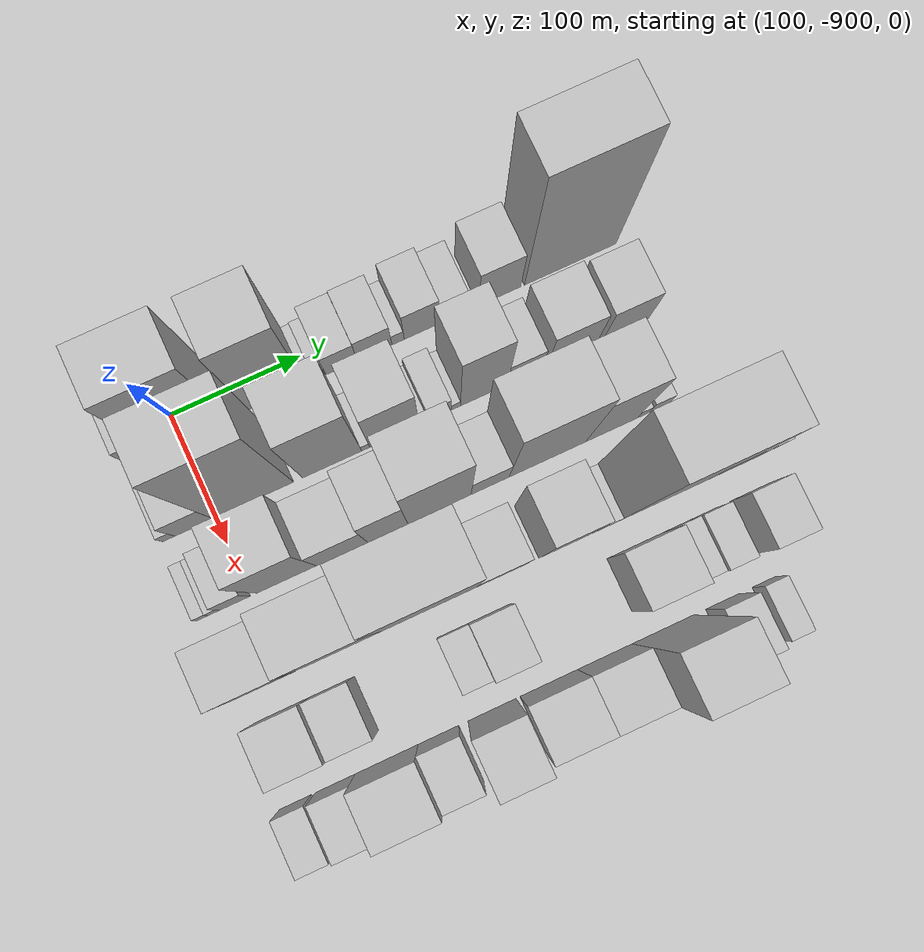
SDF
<sdf version="1.6">
 <world name="default">
  <model name="building_1">
   <static>1</static>
   <pose>100.0000 -928.6294 0 0.000000 0.000000 0.000000</pose>
   <link name="link">
    <pose>0 0 21.00 0 0 0</pose>
    <collision name="collision"><geometry><box><size>40.0000 22.7412 42.0000</size></box></geometry></collision>
    <visual name="visual">
     <cast_shadows>0</cast_shadows>
     <geometry><box><size>40.0000 22.7412 42.0000</size></box></geometry>
     <material>
      <script>
       <uri>model://HANNAS_wall/materials/scripts</uri>
       <uri>model://HANNAS_wall/materials/textures</uri>
       <name>vrc/HANNAS_wall</name>
      </script>
     </material>
    </visual>
   </link>
  </model>
  <model name="building_2">
   <static>1</static>
   <pose>100.0000 -889.6403 0 0.000000 0.000000 0.000000</pose>
   <link name="link">
    <pose>0 0 75.00 0 0 0</pose>
    <collision name="collision"><geometry><box><size>40.0000 55.2371 150.0000</size></box></geometry></collision>
    <visual name="visual">
     <cast_shadows>0</cast_shadows>
     <geometry><box><size>40.0000 55.2371 150.0000</size></box></geometry>
     <material>
      <script>
       <uri>model://HANNAS_wall/materials/scripts</uri>
       <uri>model://HANNAS_wall/materials/textures</uri>
       <name>vrc/HANNAS_wall</name>
      </script>
     </material>
    </visual>
   </link>
  </model>
  <model name="building_3">
   <static>1</static>
   <pose>100.0000 -851.6356 0 0.000000 0.000000 0.000000</pose>
   <link name="link">
    <pose>0 0 7.50 0 0 0</pose>
    <collision name="collision"><geometry><box><size>40.0000 6.7722 15.0000</size></box></geometry></collision>
    <visual name="visual">
     <cast_shadows>0</cast_shadows>
     <geometry><box><size>40.0000 6.7722 15.0000</size></box></geometry>
     <material>
      <script>
       <uri>model://HANNAS_wall/materials/scripts</uri>
       <uri>model://HANNAS_wall/materials/textures</uri>
       <name>vrc/HANNAS_wall</name>
      </script>
     </material>
    </visual>
   </link>
  </model>
  <model name="building_4">
   <static>1</static>
   <pose>100.0000 -826.1524 0 0.000000 0.000000 0.000000</pose>
   <link name="link">
    <pose>0 0 73.50 0 0 0</pose>
    <collision name="collision"><geometry><box><size>40.0000 44.1944 147.0000</size></box></geometry></collision>
    <visual name="visual">
     <cast_shadows>0</cast_shadows>
     <geometry><box><size>40.0000 44.1944 147.0000</size></box></geometry>
     <material>
      <script>
       <uri>model://HANNAS_wall/materials/scripts</uri>
       <uri>model://HANNAS_wall/materials/textures</uri>
       <name>vrc/HANNAS_wall</name>
      </script>
     </material>
    </visual>
   </link>
  </model>
  <model name="building_5">
   <static>1</static>
   <pose>100.0000 -800.8621 0 0.000000 0.000000 0.000000</pose>
   <link name="link">
    <pose>0 0 7.50 0 0 0</pose>
    <collision name="collision"><geometry><box><size>40.0000 6.3861 15.0000</size></box></geometry></collision>
    <visual name="visual">
     <cast_shadows>0</cast_shadows>
     <geometry><box><size>40.0000 6.3861 15.0000</size></box></geometry>
     <material>
      <script>
       <uri>model://HANNAS_wall/materials/scripts</uri>
       <uri>model://HANNAS_wall/materials/textures</uri>
       <name>vrc/HANNAS_wall</name>
      </script>
     </material>
    </visual>
   </link>
  </model>
  <model name="building_6">
   <static>1</static>
   <pose>100.0000 -793.3792 0 0.000000 0.000000 0.000000</pose>
   <link name="link">
    <pose>0 0 9.00 0 0 0</pose>
    <collision name="collision"><geometry><box><size>40.0000 8.5798 18.0000</size></box></geometry></collision>
    <visual name="visual">
     <cast_shadows>0</cast_shadows>
     <geometry><box><size>40.0000 8.5798 18.0000</size></box></geometry>
     <material>
      <script>
       <uri>model://HANNAS_wall/materials/scripts</uri>
       <uri>model://HANNAS_wall/materials/textures</uri>
       <name>vrc/HANNAS_wall</name>
      </script>
     </material>
    </visual>
   </link>
  </model>
  <model name="building_7">
   <static>1</static>
   <pose>100.0000 -776.9503 0 0.000000 0.000000 0.000000</pose>
   <link name="link">
    <pose>0 0 21.00 0 0 0</pose>
    <collision name="collision"><geometry><box><size>40.0000 24.2779 42.0000</size></box></geometry></collision>
    <visual name="visual">
     <cast_shadows>0</cast_shadows>
     <geometry><box><size>40.0000 24.2779 42.0000</size></box></geometry>
     <material>
      <script>
       <uri>model://HANNAS_wall/materials/scripts</uri>
       <uri>model://HANNAS_wall/materials/textures</uri>
       <name>vrc/HANNAS_wall</name>
      </script>
     </material>
    </visual>
   </link>
  </model>
  <model name="building_8">
   <static>1</static>
   <pose>100.0000 -751.3723 0 0.000000 0.000000 0.000000</pose>
   <link name="link">
    <pose>0 0 22.50 0 0 0</pose>
    <collision name="collision"><geometry><box><size>40.0000 26.8782 45.0000</size></box></geometry></collision>
    <visual name="visual">
     <cast_shadows>0</cast_shadows>
     <geometry><box><size>40.0000 26.8782 45.0000</size></box></geometry>
     <material>
      <script>
       <uri>model://HANNAS_wall/materials/scripts</uri>
       <uri>model://HANNAS_wall/materials/textures</uri>
       <name>vrc/HANNAS_wall</name>
      </script>
     </material>
    </visual>
   </link>
  </model>
  <model name="building_9">
   <static>1</static>
   <pose>100.0000 -733.1726 0 0.000000 0.000000 0.000000</pose>
   <link name="link">
    <pose>0 0 10.50 0 0 0</pose>
    <collision name="collision"><geometry><box><size>40.0000 9.5210 21.0000</size></box></geometry></collision>
    <visual name="visual">
     <cast_shadows>0</cast_shadows>
     <geometry><box><size>40.0000 9.5210 21.0000</size></box></geometry>
     <material>
      <script>
       <uri>model://HANNAS_wall/materials/scripts</uri>
       <uri>model://HANNAS_wall/materials/textures</uri>
       <name>vrc/HANNAS_wall</name>
      </script>
     </material>
    </visual>
   </link>
  </model>
  <model name="building_10">
   <static>1</static>
   <pose>100.0000 -714.5691 0 0.000000 0.000000 0.000000</pose>
   <link name="link">
    <pose>0 0 27.00 0 0 0</pose>
    <collision name="collision"><geometry><box><size>40.0000 27.6860 54.0000</size></box></geometry></collision>
    <visual name="visual">
     <cast_shadows>0</cast_shadows>
     <geometry><box><size>40.0000 27.6860 54.0000</size></box></geometry>
     <material>
      <script>
       <uri>model://HANNAS_wall/materials/scripts</uri>
       <uri>model://HANNAS_wall/materials/textures</uri>
       <name>vrc/HANNAS_wall</name>
      </script>
     </material>
    </visual>
   </link>
  </model>
  <model name="building_11">
   <static>1</static>
   <pose>100.0000 -689.6385 0 0.000000 0.000000 0.000000</pose>
   <link name="link">
    <pose>0 0 21.00 0 0 0</pose>
    <collision name="collision"><geometry><box><size>40.0000 22.1752 42.0000</size></box></geometry></collision>
    <visual name="visual">
     <cast_shadows>0</cast_shadows>
     <geometry><box><size>40.0000 22.1752 42.0000</size></box></geometry>
     <material>
      <script>
       <uri>model://HANNAS_wall/materials/scripts</uri>
       <uri>model://HANNAS_wall/materials/textures</uri>
       <name>vrc/HANNAS_wall</name>
      </script>
     </material>
    </visual>
   </link>
  </model>
  <model name="building_12">
   <static>1</static>
   <pose>100.0000 -654.0368 0 0.000000 0.000000 0.000000</pose>
   <link name="link">
    <pose>0 0 33.00 0 0 0</pose>
    <collision name="collision"><geometry><box><size>40.0000 33.0283 66.0000</size></box></geometry></collision>
    <visual name="visual">
     <cast_shadows>0</cast_shadows>
     <geometry><box><size>40.0000 33.0283 66.0000</size></box></geometry>
     <material>
      <script>
       <uri>model://HANNAS_wall/materials/scripts</uri>
       <uri>model://HANNAS_wall/materials/textures</uri>
       <name>vrc/HANNAS_wall</name>
      </script>
     </material>
    </visual>
   </link>
  </model>
  <model name="building_13">
   <static>1</static>
   <pose>100.0000 -598.4503 0 0.000000 0.000000 0.000000</pose>
   <link name="link">
    <pose>0 0 93.00 0 0 0</pose>
    <collision name="collision"><geometry><box><size>40.0000 72.1446 186.0000</size></box></geometry></collision>
    <visual name="visual">
     <cast_shadows>0</cast_shadows>
     <geometry><box><size>40.0000 72.1446 186.0000</size></box></geometry>
     <material>
      <script>
       <uri>model://HANNAS_wall/materials/scripts</uri>
       <uri>model://HANNAS_wall/materials/textures</uri>
       <name>vrc/HANNAS_wall</name>
      </script>
     </material>
    </visual>
   </link>
  </model>
  <model name="building_62">
   <static>1</static>
   <pose>160.0000 -935.3581 0 0.000000 0.000000 0.000000</pose>
   <link name="link">
    <pose>0 0 10.50 0 0 0</pose>
    <collision name="collision"><geometry><box><size>40.0000 9.2838 21.0000</size></box></geometry></collision>
    <visual name="visual">
     <cast_shadows>0</cast_shadows>
     <geometry><box><size>40.0000 9.2838 21.0000</size></box></geometry>
     <material>
      <script>
       <uri>model://HANNAS_wall/materials/scripts</uri>
       <uri>model://HANNAS_wall/materials/textures</uri>
       <name>vrc/HANNAS_wall</name>
      </script>
     </material>
    </visual>
   </link>
  </model>
  <model name="building_63">
   <static>1</static>
   <pose>160.0000 -916.2268 0 0.000000 0.000000 0.000000</pose>
   <link name="link">
    <pose>0 0 25.50 0 0 0</pose>
    <collision name="collision"><geometry><box><size>40.0000 28.9789 51.0000</size></box></geometry></collision>
    <visual name="visual">
     <cast_shadows>0</cast_shadows>
     <geometry><box><size>40.0000 28.9789 51.0000</size></box></geometry>
     <material>
      <script>
       <uri>model://HANNAS_wall/materials/scripts</uri>
       <uri>model://HANNAS_wall/materials/textures</uri>
       <name>vrc/HANNAS_wall</name>
      </script>
     </material>
    </visual>
   </link>
  </model>
  <model name="building_64">
   <static>1</static>
   <pose>160.0000 -871.2117 0 0.000000 0.000000 0.000000</pose>
   <link name="link">
    <pose>0 0 93.00 0 0 0</pose>
    <collision name="collision"><geometry><box><size>40.0000 61.0512 186.0000</size></box></geometry></collision>
    <visual name="visual">
     <cast_shadows>0</cast_shadows>
     <geometry><box><size>40.0000 61.0512 186.0000</size></box></geometry>
     <material>
      <script>
       <uri>model://HANNAS_wall/materials/scripts</uri>
       <uri>model://HANNAS_wall/materials/textures</uri>
       <name>vrc/HANNAS_wall</name>
      </script>
     </material>
    </visual>
   </link>
  </model>
  <model name="building_65">
   <static>1</static>
   <pose>160.0000 -811.0714 0 0.000000 0.000000 0.000000</pose>
   <link name="link">
    <pose>0 0 66.00 0 0 0</pose>
    <collision name="collision"><geometry><box><size>40.0000 45.2295 132.0000</size></box></geometry></collision>
    <visual name="visual">
     <cast_shadows>0</cast_shadows>
     <geometry><box><size>40.0000 45.2295 132.0000</size></box></geometry>
     <material>
      <script>
       <uri>model://HANNAS_wall/materials/scripts</uri>
       <uri>model://HANNAS_wall/materials/textures</uri>
       <name>vrc/HANNAS_wall</name>
      </script>
     </material>
    </visual>
   </link>
  </model>
  <model name="building_66">
   <static>1</static>
   <pose>160.0000 -785.3472 0 0.000000 0.000000 0.000000</pose>
   <link name="link">
    <pose>0 0 7.50 0 0 0</pose>
    <collision name="collision"><geometry><box><size>40.0000 6.2188 15.0000</size></box></geometry></collision>
    <visual name="visual">
     <cast_shadows>0</cast_shadows>
     <geometry><box><size>40.0000 6.2188 15.0000</size></box></geometry>
     <material>
      <script>
       <uri>model://HANNAS_wall/materials/scripts</uri>
       <uri>model://HANNAS_wall/materials/textures</uri>
       <name>vrc/HANNAS_wall</name>
      </script>
     </material>
    </visual>
   </link>
  </model>
  <model name="building_67">
   <static>1</static>
   <pose>160.0000 -763.3265 0 0.000000 0.000000 0.000000</pose>
   <link name="link">
    <pose>0 0 48.00 0 0 0</pose>
    <collision name="collision"><geometry><box><size>40.0000 37.8226 96.0000</size></box></geometry></collision>
    <visual name="visual">
     <cast_shadows>0</cast_shadows>
     <geometry><box><size>40.0000 37.8226 96.0000</size></box></geometry>
     <material>
      <script>
       <uri>model://HANNAS_wall/materials/scripts</uri>
       <uri>model://HANNAS_wall/materials/textures</uri>
       <name>vrc/HANNAS_wall</name>
      </script>
     </material>
    </visual>
   </link>
  </model>
  <model name="building_68">
   <static>1</static>
   <pose>160.0000 -741.1229 0 0.000000 0.000000 0.000000</pose>
   <link name="link">
    <pose>0 0 7.50 0 0 0</pose>
    <collision name="collision"><geometry><box><size>40.0000 6.5846 15.0000</size></box></geometry></collision>
    <visual name="visual">
     <cast_shadows>0</cast_shadows>
     <geometry><box><size>40.0000 6.5846 15.0000</size></box></geometry>
     <material>
      <script>
       <uri>model://HANNAS_wall/materials/scripts</uri>
       <uri>model://HANNAS_wall/materials/textures</uri>
       <name>vrc/HANNAS_wall</name>
      </script>
     </material>
    </visual>
   </link>
  </model>
  <model name="building_69">
   <static>1</static>
   <pose>160.0000 -728.6332 0 0.000000 0.000000 0.000000</pose>
   <link name="link">
    <pose>0 0 16.50 0 0 0</pose>
    <collision name="collision"><geometry><box><size>40.0000 18.3947 33.0000</size></box></geometry></collision>
    <visual name="visual">
     <cast_shadows>0</cast_shadows>
     <geometry><box><size>40.0000 18.3947 33.0000</size></box></geometry>
     <material>
      <script>
       <uri>model://HANNAS_wall/materials/scripts</uri>
       <uri>model://HANNAS_wall/materials/textures</uri>
       <name>vrc/HANNAS_wall</name>
      </script>
     </material>
    </visual>
   </link>
  </model>
  <model name="building_70">
   <static>1</static>
   <pose>160.0000 -715.9429 0 0.000000 0.000000 0.000000</pose>
   <link name="link">
    <pose>0 0 7.50 0 0 0</pose>
    <collision name="collision"><geometry><box><size>40.0000 6.9858 15.0000</size></box></geometry></collision>
    <visual name="visual">
     <cast_shadows>0</cast_shadows>
     <geometry><box><size>40.0000 6.9858 15.0000</size></box></geometry>
     <material>
      <script>
       <uri>model://HANNAS_wall/materials/scripts</uri>
       <uri>model://HANNAS_wall/materials/textures</uri>
       <name>vrc/HANNAS_wall</name>
      </script>
     </material>
    </visual>
   </link>
  </model>
  <model name="building_71">
   <static>1</static>
   <pose>160.0000 -694.3924 0 0.000000 0.000000 0.000000</pose>
   <link name="link">
    <pose>0 0 60.00 0 0 0</pose>
    <collision name="collision"><geometry><box><size>40.0000 36.1153 120.0000</size></box></geometry></collision>
    <visual name="visual">
     <cast_shadows>0</cast_shadows>
     <geometry><box><size>40.0000 36.1153 120.0000</size></box></geometry>
     <material>
      <script>
       <uri>model://HANNAS_wall/materials/scripts</uri>
       <uri>model://HANNAS_wall/materials/textures</uri>
       <name>vrc/HANNAS_wall</name>
      </script>
     </material>
    </visual>
   </link>
  </model>
  <model name="building_72">
   <static>1</static>
   <pose>160.0000 -662.8366 0 0.000000 0.000000 0.000000</pose>
   <link name="link">
    <pose>0 0 25.50 0 0 0</pose>
    <collision name="collision"><geometry><box><size>40.0000 26.9964 51.0000</size></box></geometry></collision>
    <visual name="visual">
     <cast_shadows>0</cast_shadows>
     <geometry><box><size>40.0000 26.9964 51.0000</size></box></geometry>
     <material>
      <script>
       <uri>model://HANNAS_wall/materials/scripts</uri>
       <uri>model://HANNAS_wall/materials/textures</uri>
       <name>vrc/HANNAS_wall</name>
      </script>
     </material>
    </visual>
   </link>
  </model>
  <model name="building_73">
   <static>1</static>
   <pose>160.0000 -626.2152 0 0.000000 0.000000 0.000000</pose>
   <link name="link">
    <pose>0 0 36.00 0 0 0</pose>
    <collision name="collision"><geometry><box><size>40.0000 38.2463 72.0000</size></box></geometry></collision>
    <visual name="visual">
     <cast_shadows>0</cast_shadows>
     <geometry><box><size>40.0000 38.2463 72.0000</size></box></geometry>
     <material>
      <script>
       <uri>model://HANNAS_wall/materials/scripts</uri>
       <uri>model://HANNAS_wall/materials/textures</uri>
       <name>vrc/HANNAS_wall</name>
      </script>
     </material>
    </visual>
   </link>
  </model>
  <model name="building_74">
   <static>1</static>
   <pose>160.0000 -584.4956 0 0.000000 0.000000 0.000000</pose>
   <link name="link">
    <pose>0 0 33.00 0 0 0</pose>
    <collision name="collision"><geometry><box><size>40.0000 35.1929 66.0000</size></box></geometry></collision>
    <visual name="visual">
     <cast_shadows>0</cast_shadows>
     <geometry><box><size>40.0000 35.1929 66.0000</size></box></geometry>
     <material>
      <script>
       <uri>model://HANNAS_wall/materials/scripts</uri>
       <uri>model://HANNAS_wall/materials/textures</uri>
       <name>vrc/HANNAS_wall</name>
      </script>
     </material>
    </visual>
   </link>
  </model>
  <model name="building_116">
   <static>1</static>
   <pose>220.0000 -935.5177 0 0.000000 0.000000 0.000000</pose>
   <link name="link">
    <pose>0 0 9.00 0 0 0</pose>
    <collision name="collision"><geometry><box><size>40.0000 8.9646 18.0000</size></box></geometry></collision>
    <visual name="visual">
     <cast_shadows>0</cast_shadows>
     <geometry><box><size>40.0000 8.9646 18.0000</size></box></geometry>
     <material>
      <script>
       <uri>model://HANNAS_wall/materials/scripts</uri>
       <uri>model://HANNAS_wall/materials/textures</uri>
       <name>vrc/HANNAS_wall</name>
      </script>
     </material>
    </visual>
   </link>
  </model>
  <model name="building_117">
   <static>1</static>
   <pose>220.0000 -926.5762 0 0.000000 0.000000 0.000000</pose>
   <link name="link">
    <pose>0 0 9.00 0 0 0</pose>
    <collision name="collision"><geometry><box><size>40.0000 8.9185 18.0000</size></box></geometry></collision>
    <visual name="visual">
     <cast_shadows>0</cast_shadows>
     <geometry><box><size>40.0000 8.9185 18.0000</size></box></geometry>
     <material>
      <script>
       <uri>model://HANNAS_wall/materials/scripts</uri>
       <uri>model://HANNAS_wall/materials/textures</uri>
       <name>vrc/HANNAS_wall</name>
      </script>
     </material>
    </visual>
   </link>
  </model>
  <model name="building_118">
   <static>1</static>
   <pose>220.0000 -911.1146 0 0.000000 0.000000 0.000000</pose>
   <link name="link">
    <pose>0 0 21.00 0 0 0</pose>
    <collision name="collision"><geometry><box><size>40.0000 22.0046 42.0000</size></box></geometry></collision>
    <visual name="visual">
     <cast_shadows>0</cast_shadows>
     <geometry><box><size>40.0000 22.0046 42.0000</size></box></geometry>
     <material>
      <script>
       <uri>model://HANNAS_wall/materials/scripts</uri>
       <uri>model://HANNAS_wall/materials/textures</uri>
       <name>vrc/HANNAS_wall</name>
      </script>
     </material>
    </visual>
   </link>
  </model>
  <model name="building_119">
   <static>1</static>
   <pose>220.0000 -872.4692 0 0.000000 0.000000 0.000000</pose>
   <link name="link">
    <pose>0 0 60.00 0 0 0</pose>
    <collision name="collision"><geometry><box><size>40.0000 45.2862 120.0000</size></box></geometry></collision>
    <visual name="visual">
     <cast_shadows>0</cast_shadows>
     <geometry><box><size>40.0000 45.2862 120.0000</size></box></geometry>
     <material>
      <script>
       <uri>model://HANNAS_wall/materials/scripts</uri>
       <uri>model://HANNAS_wall/materials/textures</uri>
       <name>vrc/HANNAS_wall</name>
      </script>
     </material>
    </visual>
   </link>
  </model>
  <model name="building_120">
   <static>1</static>
   <pose>220.0000 -830.5207 0 0.000000 0.000000 0.000000</pose>
   <link name="link">
    <pose>0 0 37.50 0 0 0</pose>
    <collision name="collision"><geometry><box><size>40.0000 38.6109 75.0000</size></box></geometry></collision>
    <visual name="visual">
     <cast_shadows>0</cast_shadows>
     <geometry><box><size>40.0000 38.6109 75.0000</size></box></geometry>
     <material>
      <script>
       <uri>model://HANNAS_wall/materials/scripts</uri>
       <uri>model://HANNAS_wall/materials/textures</uri>
       <name>vrc/HANNAS_wall</name>
      </script>
     </material>
    </visual>
   </link>
  </model>
  <model name="building_121">
   <static>1</static>
   <pose>220.0000 -795.8593 0 0.000000 0.000000 0.000000</pose>
   <link name="link">
    <pose>0 0 51.00 0 0 0</pose>
    <collision name="collision"><geometry><box><size>40.0000 30.7120 102.0000</size></box></geometry></collision>
    <visual name="visual">
     <cast_shadows>0</cast_shadows>
     <geometry><box><size>40.0000 30.7120 102.0000</size></box></geometry>
     <material>
      <script>
       <uri>model://HANNAS_wall/materials/scripts</uri>
       <uri>model://HANNAS_wall/materials/textures</uri>
       <name>vrc/HANNAS_wall</name>
      </script>
     </material>
    </visual>
   </link>
  </model>
  <model name="building_122">
   <static>1</static>
   <pose>220.0000 -756.3538 0 0.000000 0.000000 0.000000</pose>
   <link name="link">
    <pose>0 0 75.00 0 0 0</pose>
    <collision name="collision"><geometry><box><size>40.0000 48.2990 150.0000</size></box></geometry></collision>
    <visual name="visual">
     <cast_shadows>0</cast_shadows>
     <geometry><box><size>40.0000 48.2990 150.0000</size></box></geometry>
     <material>
      <script>
       <uri>model://HANNAS_wall/materials/scripts</uri>
       <uri>model://HANNAS_wall/materials/textures</uri>
       <name>vrc/HANNAS_wall</name>
      </script>
     </material>
    </visual>
   </link>
  </model>
  <model name="building_123">
   <static>1</static>
   <pose>220.0000 -717.5689 0 0.000000 0.000000 0.000000</pose>
   <link name="link">
    <pose>0 0 27.00 0 0 0</pose>
    <collision name="collision"><geometry><box><size>40.0000 29.2706 54.0000</size></box></geometry></collision>
    <visual name="visual">
     <cast_shadows>0</cast_shadows>
     <geometry><box><size>40.0000 29.2706 54.0000</size></box></geometry>
     <material>
      <script>
       <uri>model://HANNAS_wall/materials/scripts</uri>
       <uri>model://HANNAS_wall/materials/textures</uri>
       <name>vrc/HANNAS_wall</name>
      </script>
     </material>
    </visual>
   </link>
  </model>
  <model name="building_124">
   <static>1</static>
   <pose>220.0000 -673.3654 0 0.000000 0.000000 0.000000</pose>
   <link name="link">
    <pose>0 0 75.00 0 0 0</pose>
    <collision name="collision"><geometry><box><size>40.0000 59.1364 150.0000</size></box></geometry></collision>
    <visual name="visual">
     <cast_shadows>0</cast_shadows>
     <geometry><box><size>40.0000 59.1364 150.0000</size></box></geometry>
     <material>
      <script>
       <uri>model://HANNAS_wall/materials/scripts</uri>
       <uri>model://HANNAS_wall/materials/textures</uri>
       <name>vrc/HANNAS_wall</name>
      </script>
     </material>
    </visual>
   </link>
  </model>
  <model name="building_125">
   <static>1</static>
   <pose>220.0000 -623.8447 0 0.000000 0.000000 0.000000</pose>
   <link name="link">
    <pose>0 0 64.50 0 0 0</pose>
    <collision name="collision"><geometry><box><size>40.0000 39.9050 129.0000</size></box></geometry></collision>
    <visual name="visual">
     <cast_shadows>0</cast_shadows>
     <geometry><box><size>40.0000 39.9050 129.0000</size></box></geometry>
     <material>
      <script>
       <uri>model://HANNAS_wall/materials/scripts</uri>
       <uri>model://HANNAS_wall/materials/textures</uri>
       <name>vrc/HANNAS_wall</name>
      </script>
     </material>
    </visual>
   </link>
  </model>
  <model name="building_126">
   <static>1</static>
   <pose>220.0000 -599.3163 0 0.000000 0.000000 0.000000</pose>
   <link name="link">
    <pose>0 0 10.50 0 0 0</pose>
    <collision name="collision"><geometry><box><size>40.0000 9.1518 21.0000</size></box></geometry></collision>
    <visual name="visual">
     <cast_shadows>0</cast_shadows>
     <geometry><box><size>40.0000 9.1518 21.0000</size></box></geometry>
     <material>
      <script>
       <uri>model://HANNAS_wall/materials/scripts</uri>
       <uri>model://HANNAS_wall/materials/textures</uri>
       <name>vrc/HANNAS_wall</name>
      </script>
     </material>
    </visual>
   </link>
  </model>
  <model name="building_127">
   <static>1</static>
   <pose>220.0000 -586.8951 0 0.000000 0.000000 0.000000</pose>
   <link name="link">
    <pose>0 0 15.00 0 0 0</pose>
    <collision name="collision"><geometry><box><size>40.0000 15.6906 30.0000</size></box></geometry></collision>
    <visual name="visual">
     <cast_shadows>0</cast_shadows>
     <geometry><box><size>40.0000 15.6906 30.0000</size></box></geometry>
     <material>
      <script>
       <uri>model://HANNAS_wall/materials/scripts</uri>
       <uri>model://HANNAS_wall/materials/textures</uri>
       <name>vrc/HANNAS_wall</name>
      </script>
     </material>
    </visual>
   </link>
  </model>
  <model name="building_170">
   <static>1</static>
   <pose>280.0000 -915.8269 0 0.000000 0.000000 0.000000</pose>
   <link name="link">
    <pose>0 0 45.00 0 0 0</pose>
    <collision name="collision"><geometry><box><size>40.0000 48.3462 90.0000</size></box></geometry></collision>
    <visual name="visual">
     <cast_shadows>0</cast_shadows>
     <geometry><box><size>40.0000 48.3462 90.0000</size></box></geometry>
     <material>
      <script>
       <uri>model://HANNAS_wall/materials/scripts</uri>
       <uri>model://HANNAS_wall/materials/textures</uri>
       <name>vrc/HANNAS_wall</name>
      </script>
     </material>
    </visual>
   </link>
  </model>
  <model name="building_171">
   <static>1</static>
   <pose>280.0000 -855.5516 0 0.000000 0.000000 0.000000</pose>
   <link name="link">
    <pose>0 0 73.50 0 0 0</pose>
    <collision name="collision"><geometry><box><size>40.0000 58.2044 147.0000</size></box></geometry></collision>
    <visual name="visual">
     <cast_shadows>0</cast_shadows>
     <geometry><box><size>40.0000 58.2044 147.0000</size></box></geometry>
     <material>
      <script>
       <uri>model://HANNAS_wall/materials/scripts</uri>
       <uri>model://HANNAS_wall/materials/textures</uri>
       <name>vrc/HANNAS_wall</name>
      </script>
     </material>
    </visual>
   </link>
  </model>
  <model name="building_172">
   <static>1</static>
   <pose>280.0000 -791.4285 0 0.000000 0.000000 0.000000</pose>
   <link name="link">
    <pose>0 0 109.50 0 0 0</pose>
    <collision name="collision"><geometry><box><size>40.0000 70.0419 219.0000</size></box></geometry></collision>
    <visual name="visual">
     <cast_shadows>0</cast_shadows>
     <geometry><box><size>40.0000 70.0419 219.0000</size></box></geometry>
     <material>
      <script>
       <uri>model://HANNAS_wall/materials/scripts</uri>
       <uri>model://HANNAS_wall/materials/textures</uri>
       <name>vrc/HANNAS_wall</name>
      </script>
     </material>
    </visual>
   </link>
  </model>
  <model name="building_173">
   <static>1</static>
   <pose>280.0000 -736.7995 0 0.000000 0.000000 0.000000</pose>
   <link name="link">
    <pose>0 0 33.00 0 0 0</pose>
    <collision name="collision"><geometry><box><size>40.0000 39.2161 66.0000</size></box></geometry></collision>
    <visual name="visual">
     <cast_shadows>0</cast_shadows>
     <geometry><box><size>40.0000 39.2161 66.0000</size></box></geometry>
     <material>
      <script>
       <uri>model://HANNAS_wall/materials/scripts</uri>
       <uri>model://HANNAS_wall/materials/textures</uri>
       <name>vrc/HANNAS_wall</name>
      </script>
     </material>
    </visual>
   </link>
  </model>
  <model name="building_174">
   <static>1</static>
   <pose>280.0000 -689.3021 0 0.000000 0.000000 0.000000</pose>
   <link name="link">
    <pose>0 0 60.00 0 0 0</pose>
    <collision name="collision"><geometry><box><size>40.0000 37.7787 120.0000</size></box></geometry></collision>
    <visual name="visual">
     <cast_shadows>0</cast_shadows>
     <geometry><box><size>40.0000 37.7787 120.0000</size></box></geometry>
     <material>
      <script>
       <uri>model://HANNAS_wall/materials/scripts</uri>
       <uri>model://HANNAS_wall/materials/textures</uri>
       <name>vrc/HANNAS_wall</name>
      </script>
     </material>
    </visual>
   </link>
  </model>
  <model name="building_175">
   <static>1</static>
   <pose>280.0000 -658.2865 0 0.000000 0.000000 0.000000</pose>
   <link name="link">
    <pose>0 0 18.00 0 0 0</pose>
    <collision name="collision"><geometry><box><size>40.0000 18.2526 36.0000</size></box></geometry></collision>
    <visual name="visual">
     <cast_shadows>0</cast_shadows>
     <geometry><box><size>40.0000 18.2526 36.0000</size></box></geometry>
     <material>
      <script>
       <uri>model://HANNAS_wall/materials/scripts</uri>
       <uri>model://HANNAS_wall/materials/textures</uri>
       <name>vrc/HANNAS_wall</name>
      </script>
     </material>
    </visual>
   </link>
  </model>
  <model name="building_176">
   <static>1</static>
   <pose>280.0000 -614.2554 0 0.000000 0.000000 0.000000</pose>
   <link name="link">
    <pose>0 0 112.50 0 0 0</pose>
    <collision name="collision"><geometry><box><size>40.0000 69.8095 225.0000</size></box></geometry></collision>
    <visual name="visual">
     <cast_shadows>0</cast_shadows>
     <geometry><box><size>40.0000 69.8095 225.0000</size></box></geometry>
     <material>
      <script>
       <uri>model://HANNAS_wall/materials/scripts</uri>
       <uri>model://HANNAS_wall/materials/textures</uri>
       <name>vrc/HANNAS_wall</name>
      </script>
     </material>
    </visual>
   </link>
  </model>
  <model name="building_177">
   <static>1</static>
   <pose>280.0000 -558.2097 0 0.000000 0.000000 0.000000</pose>
   <link name="link">
    <pose>0 0 37.50 0 0 0</pose>
    <collision name="collision"><geometry><box><size>40.0000 42.2820 75.0000</size></box></geometry></collision>
    <visual name="visual">
     <cast_shadows>0</cast_shadows>
     <geometry><box><size>40.0000 42.2820 75.0000</size></box></geometry>
     <material>
      <script>
       <uri>model://HANNAS_wall/materials/scripts</uri>
       <uri>model://HANNAS_wall/materials/textures</uri>
       <name>vrc/HANNAS_wall</name>
      </script>
     </material>
    </visual>
   </link>
  </model>
  <model name="building_221">
   <static>1</static>
   <pose>340.0000 -910.0324 0 0.000000 0.000000 0.000000</pose>
   <link name="link">
    <pose>0 0 34.50 0 0 0</pose>
    <collision name="collision"><geometry><box><size>40.0000 39.9352 69.0000</size></box></geometry></collision>
    <visual name="visual">
     <cast_shadows>0</cast_shadows>
     <geometry><box><size>40.0000 39.9352 69.0000</size></box></geometry>
     <material>
      <script>
       <uri>model://HANNAS_wall/materials/scripts</uri>
       <uri>model://HANNAS_wall/materials/textures</uri>
       <name>vrc/HANNAS_wall</name>
      </script>
     </material>
    </visual>
   </link>
  </model>
  <model name="building_222">
   <static>1</static>
   <pose>340.0000 -873.7670 0 0.000000 0.000000 0.000000</pose>
   <link name="link">
    <pose>0 0 28.50 0 0 0</pose>
    <collision name="collision"><geometry><box><size>40.0000 32.5957 57.0000</size></box></geometry></collision>
    <visual name="visual">
     <cast_shadows>0</cast_shadows>
     <geometry><box><size>40.0000 32.5957 57.0000</size></box></geometry>
     <material>
      <script>
       <uri>model://HANNAS_wall/materials/scripts</uri>
       <uri>model://HANNAS_wall/materials/textures</uri>
       <name>vrc/HANNAS_wall</name>
      </script>
     </material>
    </visual>
   </link>
  </model>
  <model name="building_223">
   <static>1</static>
   <pose>340.0000 -783.3235 0 0.000000 0.000000 0.000000</pose>
   <link name="link">
    <pose>0 0 19.50 0 0 0</pose>
    <collision name="collision"><geometry><box><size>40.0000 22.7637 39.0000</size></box></geometry></collision>
    <visual name="visual">
     <cast_shadows>0</cast_shadows>
     <geometry><box><size>40.0000 22.7637 39.0000</size></box></geometry>
     <material>
      <script>
       <uri>model://HANNAS_wall/materials/scripts</uri>
       <uri>model://HANNAS_wall/materials/textures</uri>
       <name>vrc/HANNAS_wall</name>
      </script>
     </material>
    </visual>
   </link>
  </model>
  <model name="building_224">
   <static>1</static>
   <pose>340.0000 -756.0043 0 0.000000 0.000000 0.000000</pose>
   <link name="link">
    <pose>0 0 31.50 0 0 0</pose>
    <collision name="collision"><geometry><box><size>40.0000 31.8747 63.0000</size></box></geometry></collision>
    <visual name="visual">
     <cast_shadows>0</cast_shadows>
     <geometry><box><size>40.0000 31.8747 63.0000</size></box></geometry>
     <material>
      <script>
       <uri>model://HANNAS_wall/materials/scripts</uri>
       <uri>model://HANNAS_wall/materials/textures</uri>
       <name>vrc/HANNAS_wall</name>
      </script>
     </material>
    </visual>
   </link>
  </model>
  <model name="building_225">
   <static>1</static>
   <pose>340.0000 -644.3778 0 0.000000 0.000000 0.000000</pose>
   <link name="link">
    <pose>0 0 37.50 0 0 0</pose>
    <collision name="collision"><geometry><box><size>40.0000 42.4594 75.0000</size></box></geometry></collision>
    <visual name="visual">
     <cast_shadows>0</cast_shadows>
     <geometry><box><size>40.0000 42.4594 75.0000</size></box></geometry>
     <material>
      <script>
       <uri>model://HANNAS_wall/materials/scripts</uri>
       <uri>model://HANNAS_wall/materials/textures</uri>
       <name>vrc/HANNAS_wall</name>
      </script>
     </material>
    </visual>
   </link>
  </model>
  <model name="building_226">
   <static>1</static>
   <pose>340.0000 -612.5559 0 0.000000 0.000000 0.000000</pose>
   <link name="link">
    <pose>0 0 18.00 0 0 0</pose>
    <collision name="collision"><geometry><box><size>40.0000 21.1843 36.0000</size></box></geometry></collision>
    <visual name="visual">
     <cast_shadows>0</cast_shadows>
     <geometry><box><size>40.0000 21.1843 36.0000</size></box></geometry>
     <material>
      <script>
       <uri>model://HANNAS_wall/materials/scripts</uri>
       <uri>model://HANNAS_wall/materials/textures</uri>
       <name>vrc/HANNAS_wall</name>
      </script>
     </material>
    </visual>
   </link>
  </model>
  <model name="building_227">
   <static>1</static>
   <pose>340.0000 -591.2514 0 0.000000 0.000000 0.000000</pose>
   <link name="link">
    <pose>0 0 21.00 0 0 0</pose>
    <collision name="collision"><geometry><box><size>40.0000 21.4246 42.0000</size></box></geometry></collision>
    <visual name="visual">
     <cast_shadows>0</cast_shadows>
     <geometry><box><size>40.0000 21.4246 42.0000</size></box></geometry>
     <material>
      <script>
       <uri>model://HANNAS_wall/materials/scripts</uri>
       <uri>model://HANNAS_wall/materials/textures</uri>
       <name>vrc/HANNAS_wall</name>
      </script>
     </material>
    </visual>
   </link>
  </model>
  <model name="building_228">
   <static>1</static>
   <pose>340.0000 -554.9639 0 0.000000 0.000000 0.000000</pose>
   <link name="link">
    <pose>0 0 27.00 0 0 0</pose>
    <collision name="collision"><geometry><box><size>40.0000 31.1503 54.0000</size></box></geometry></collision>
    <visual name="visual">
     <cast_shadows>0</cast_shadows>
     <geometry><box><size>40.0000 31.1503 54.0000</size></box></geometry>
     <material>
      <script>
       <uri>model://HANNAS_wall/materials/scripts</uri>
       <uri>model://HANNAS_wall/materials/textures</uri>
       <name>vrc/HANNAS_wall</name>
      </script>
     </material>
    </visual>
   </link>
  </model>
  <model name="building_268">
   <static>1</static>
   <pose>400.0000 -928.2726 0 0.000000 0.000000 0.000000</pose>
   <link name="link">
    <pose>0 0 21.00 0 0 0</pose>
    <collision name="collision"><geometry><box><size>40.0000 23.4548 42.0000</size></box></geometry></collision>
    <visual name="visual">
     <cast_shadows>0</cast_shadows>
     <geometry><box><size>40.0000 23.4548 42.0000</size></box></geometry>
     <material>
      <script>
       <uri>model://HANNAS_wall/materials/scripts</uri>
       <uri>model://HANNAS_wall/materials/textures</uri>
       <name>vrc/HANNAS_wall</name>
      </script>
     </material>
    </visual>
   </link>
  </model>
  <model name="building_269">
   <static>1</static>
   <pose>400.0000 -898.6901 0 0.000000 0.000000 0.000000</pose>
   <link name="link">
    <pose>0 0 25.50 0 0 0</pose>
    <collision name="collision"><geometry><box><size>40.0000 29.7101 51.0000</size></box></geometry></collision>
    <visual name="visual">
     <cast_shadows>0</cast_shadows>
     <geometry><box><size>40.0000 29.7101 51.0000</size></box></geometry>
     <material>
      <script>
       <uri>model://HANNAS_wall/materials/scripts</uri>
       <uri>model://HANNAS_wall/materials/textures</uri>
       <name>vrc/HANNAS_wall</name>
      </script>
     </material>
    </visual>
   </link>
  </model>
  <model name="building_270">
   <static>1</static>
   <pose>400.0000 -860.3945 0 0.000000 0.000000 0.000000</pose>
   <link name="link">
    <pose>0 0 40.50 0 0 0</pose>
    <collision name="collision"><geometry><box><size>40.0000 46.8812 81.0000</size></box></geometry></collision>
    <visual name="visual">
     <cast_shadows>0</cast_shadows>
     <geometry><box><size>40.0000 46.8812 81.0000</size></box></geometry>
     <material>
      <script>
       <uri>model://HANNAS_wall/materials/scripts</uri>
       <uri>model://HANNAS_wall/materials/textures</uri>
       <name>vrc/HANNAS_wall</name>
      </script>
     </material>
    </visual>
   </link>
  </model>
  <model name="building_271">
   <static>1</static>
   <pose>400.0000 -821.7471 0 0.000000 0.000000 0.000000</pose>
   <link name="link">
    <pose>0 0 30.00 0 0 0</pose>
    <collision name="collision"><geometry><box><size>40.0000 30.4137 60.0000</size></box></geometry></collision>
    <visual name="visual">
     <cast_shadows>0</cast_shadows>
     <geometry><box><size>40.0000 30.4137 60.0000</size></box></geometry>
     <material>
      <script>
       <uri>model://HANNAS_wall/materials/scripts</uri>
       <uri>model://HANNAS_wall/materials/textures</uri>
       <name>vrc/HANNAS_wall</name>
      </script>
     </material>
    </visual>
   </link>
  </model>
  <model name="building_272">
   <static>1</static>
   <pose>400.0000 -781.4960 0 0.000000 0.000000 0.000000</pose>
   <link name="link">
    <pose>0 0 54.00 0 0 0</pose>
    <collision name="collision"><geometry><box><size>40.0000 36.0885 108.0000</size></box></geometry></collision>
    <visual name="visual">
     <cast_shadows>0</cast_shadows>
     <geometry><box><size>40.0000 36.0885 108.0000</size></box></geometry>
     <material>
      <script>
       <uri>model://HANNAS_wall/materials/scripts</uri>
       <uri>model://HANNAS_wall/materials/textures</uri>
       <name>vrc/HANNAS_wall</name>
      </script>
     </material>
    </visual>
   </link>
  </model>
  <model name="building_273">
   <static>1</static>
   <pose>400.0000 -738.5698 0 0.000000 0.000000 0.000000</pose>
   <link name="link">
    <pose>0 0 37.50 0 0 0</pose>
    <collision name="collision"><geometry><box><size>40.0000 43.7638 75.0000</size></box></geometry></collision>
    <visual name="visual">
     <cast_shadows>0</cast_shadows>
     <geometry><box><size>40.0000 43.7638 75.0000</size></box></geometry>
     <material>
      <script>
       <uri>model://HANNAS_wall/materials/scripts</uri>
       <uri>model://HANNAS_wall/materials/textures</uri>
       <name>vrc/HANNAS_wall</name>
      </script>
     </material>
    </visual>
   </link>
  </model>
  <model name="building_274">
   <static>1</static>
   <pose>400.0000 -695.8755 0 0.000000 0.000000 0.000000</pose>
   <link name="link">
    <pose>0 0 37.50 0 0 0</pose>
    <collision name="collision"><geometry><box><size>40.0000 41.6247 75.0000</size></box></geometry></collision>
    <visual name="visual">
     <cast_shadows>0</cast_shadows>
     <geometry><box><size>40.0000 41.6247 75.0000</size></box></geometry>
     <material>
      <script>
       <uri>model://HANNAS_wall/materials/scripts</uri>
       <uri>model://HANNAS_wall/materials/textures</uri>
       <name>vrc/HANNAS_wall</name>
      </script>
     </material>
    </visual>
   </link>
  </model>
  <model name="building_275">
   <static>1</static>
   <pose>400.0000 -651.5137 0 0.000000 0.000000 0.000000</pose>
   <link name="link">
    <pose>0 0 75.00 0 0 0</pose>
    <collision name="collision"><geometry><box><size>40.0000 47.0989 150.0000</size></box></geometry></collision>
    <visual name="visual">
     <cast_shadows>0</cast_shadows>
     <geometry><box><size>40.0000 47.0989 150.0000</size></box></geometry>
     <material>
      <script>
       <uri>model://HANNAS_wall/materials/scripts</uri>
       <uri>model://HANNAS_wall/materials/textures</uri>
       <name>vrc/HANNAS_wall</name>
      </script>
     </material>
    </visual>
   </link>
  </model>
  <model name="building_276">
   <static>1</static>
   <pose>400.0000 -605.9544 0 0.000000 0.000000 0.000000</pose>
   <link name="link">
    <pose>0 0 25.50 0 0 0</pose>
    <collision name="collision"><geometry><box><size>40.0000 26.0197 51.0000</size></box></geometry></collision>
    <visual name="visual">
     <cast_shadows>0</cast_shadows>
     <geometry><box><size>40.0000 26.0197 51.0000</size></box></geometry>
     <material>
      <script>
       <uri>model://HANNAS_wall/materials/scripts</uri>
       <uri>model://HANNAS_wall/materials/textures</uri>
       <name>vrc/HANNAS_wall</name>
      </script>
     </material>
    </visual>
   </link>
  </model>
  <model name="building_277">
   <static>1</static>
   <pose>400.0000 -574.1223 0 0.000000 0.000000 0.000000</pose>
   <link name="link">
    <pose>0 0 15.00 0 0 0</pose>
    <collision name="collision"><geometry><box><size>40.0000 17.6445 30.0000</size></box></geometry></collision>
    <visual name="visual">
     <cast_shadows>0</cast_shadows>
     <geometry><box><size>40.0000 17.6445 30.0000</size></box></geometry>
     <material>
      <script>
       <uri>model://HANNAS_wall/materials/scripts</uri>
       <uri>model://HANNAS_wall/materials/textures</uri>
       <name>vrc/HANNAS_wall</name>
      </script>
     </material>
    </visual>
   </link>
  </model>
 </world>
</sdf>
